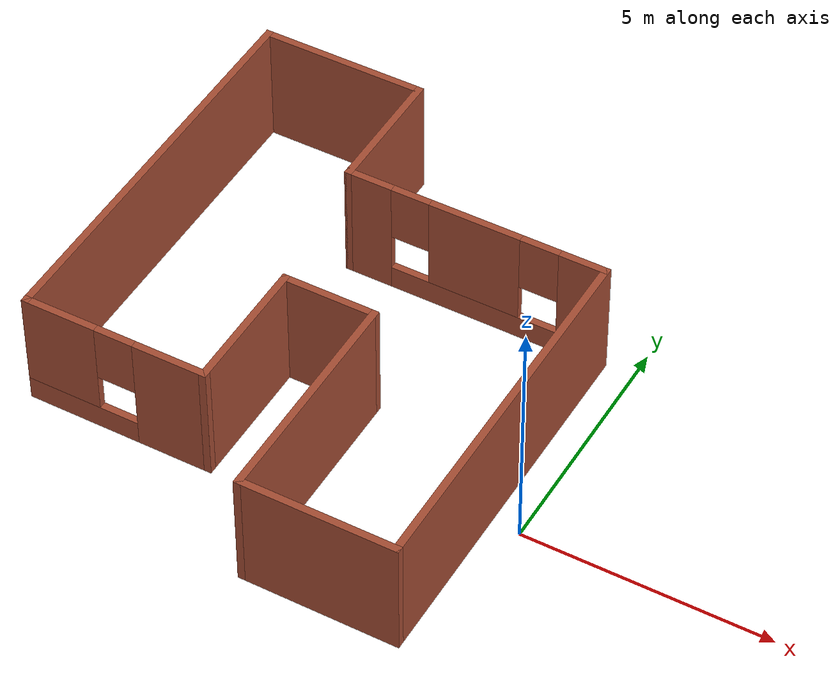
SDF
<?xml version='1.0'?>
<sdf version='1.6'>
  <model name='h'>
    <pose frame=''>-4.99031 1.85832 0 0 -0 0</pose>
    <link name='Wall_0'>
      <collision name='Wall_0_Collision'>
        <geometry>
          <box>
            <size>8.5 0.15 2.5</size>
          </box>
        </geometry>
        <pose frame=''>0 0 1.25 0 -0 0</pose>
      </collision>
      <visual name='Wall_0_Visual'>
        <pose frame=''>0 0 1.25 0 -0 0</pose>
        <geometry>
          <box>
            <size>8.5 0.15 2.5</size>
          </box>
        </geometry>
        <material>
          <script>
            <uri>file://media/materials/scripts/gazebo.material</uri>
            <name>Gazebo/Bricks</name>
          </script>
          <ambient>1 1 1 1</ambient>
        </material>
        <meta>
          <layer>0</layer>
        </meta>
      </visual>
      <pose frame=''>-4.34334 0.925 0 0 -0 1.5708</pose>
    </link>
    <link name='Wall_10'>
      <collision name='Wall_10_Collision'>
        <geometry>
          <box>
            <size>2.9 0.15 2.5</size>
          </box>
        </geometry>
        <pose frame=''>0 0 1.25 0 -0 0</pose>
      </collision>
      <visual name='Wall_10_Visual'>
        <pose frame=''>0 0 1.25 0 -0 0</pose>
        <geometry>
          <box>
            <size>2.9 0.15 2.5</size>
          </box>
        </geometry>
        <material>
          <script>
            <uri>file://media/materials/scripts/gazebo.material</uri>
            <name>Gazebo/Bricks</name>
          </script>
          <ambient>1 1 1 1</ambient>
        </material>
        <meta>
          <layer>0</layer>
        </meta>
      </visual>
      <pose frame=''>-0.606492 -1.875 0 0 -0 -1.5708</pose>
    </link>
    <link name='Wall_11'>
      <pose frame=''>-2.47492 -3.25 0 0 -0 -3.14159</pose>
      <visual name='Wall_11_Visual_0'>
        <pose frame=''>-1.17274 0 1.25 0 -0 0</pose>
        <geometry>
          <box>
            <size>1.54171 0.15 2.5</size>
          </box>
        </geometry>
        <material>
          <script>
            <uri>file://media/materials/scripts/gazebo.material</uri>
            <name>Gazebo/Bricks</name>
          </script>
          <ambient>1 1 1 1</ambient>
        </material>
        <meta>
          <layer>0</layer>
        </meta>
      </visual>
      <collision name='Wall_11_Collision_0'>
        <geometry>
          <box>
            <size>1.54171 0.15 2.5</size>
          </box>
        </geometry>
        <pose frame=''>-1.17274 0 1.25 0 -0 0</pose>
      </collision>
      <visual name='Wall_11_Visual_1'>
        <pose frame=''>0.770855 0 0.25 0 -0 0</pose>
        <geometry>
          <box>
            <size>2.34547 0.15 0.5</size>
          </box>
        </geometry>
        <material>
          <script>
            <uri>file://media/materials/scripts/gazebo.material</uri>
            <name>Gazebo/Bricks</name>
          </script>
          <ambient>1 1 1 1</ambient>
        </material>
        <meta>
          <layer>0</layer>
        </meta>
      </visual>
      <collision name='Wall_11_Collision_1'>
        <geometry>
          <box>
            <size>2.34547 0.15 0.5</size>
          </box>
        </geometry>
        <pose frame=''>0.770855 0 0.25 0 -0 0</pose>
      </collision>
      <visual name='Wall_11_Visual_2'>
        <pose frame=''>1.17085 0 1.5 0 -0 0</pose>
        <geometry>
          <box>
            <size>1.54547 0.15 2</size>
          </box>
        </geometry>
        <material>
          <script>
            <uri>file://media/materials/scripts/gazebo.material</uri>
            <name>Gazebo/Bricks</name>
          </script>
          <ambient>1 1 1 1</ambient>
        </material>
        <meta>
          <layer>0</layer>
        </meta>
      </visual>
      <collision name='Wall_11_Collision_2'>
        <geometry>
          <box>
            <size>1.54547 0.15 2</size>
          </box>
        </geometry>
        <pose frame=''>1.17085 0 1.5 0 -0 0</pose>
      </collision>
      <visual name='Wall_11_Visual_3'>
        <pose frame=''>-0.001883 0 1.9 0 -0 0</pose>
        <geometry>
          <box>
            <size>0.8 0.15 1.2</size>
          </box>
        </geometry>
        <material>
          <script>
            <uri>file://media/materials/scripts/gazebo.material</uri>
            <name>Gazebo/Bricks</name>
          </script>
          <ambient>1 1 1 1</ambient>
        </material>
        <meta>
          <layer>0</layer>
        </meta>
      </visual>
      <collision name='Wall_11_Collision_3'>
        <geometry>
          <box>
            <size>0.8 0.15 1.2</size>
          </box>
        </geometry>
        <pose frame=''>-0.001883 0 1.9 0 -0 0</pose>
      </collision>
    </link>
    <link name='Wall_3'>
      <collision name='Wall_3_Collision'>
        <geometry>
          <box>
            <size>3.4737 0.15 2.5</size>
          </box>
        </geometry>
        <pose frame=''>0 0 1.25 0 -0 0</pose>
      </collision>
      <visual name='Wall_3_Visual'>
        <pose frame=''>0 0 1.25 0 -0 0</pose>
        <geometry>
          <box>
            <size>3.4737 0.15 2.5</size>
          </box>
        </geometry>
        <material>
          <script>
            <uri>file://media/materials/scripts/gazebo.material</uri>
            <name>Gazebo/Bricks</name>
          </script>
          <ambient>1 1 1 1</ambient>
        </material>
        <meta>
          <layer>0</layer>
        </meta>
      </visual>
      <pose frame=''>-2.66834 5.1 0 0 -0 0</pose>
    </link>
    <link name='Wall_4'>
      <collision name='Wall_4_Collision'>
        <geometry>
          <box>
            <size>2.75 0.15 2.5</size>
          </box>
        </geometry>
        <pose frame=''>0 0 1.25 0 -0 0</pose>
      </collision>
      <visual name='Wall_4_Visual'>
        <pose frame=''>0 0 1.25 0 -0 0</pose>
        <geometry>
          <box>
            <size>2.75 0.15 2.5</size>
          </box>
        </geometry>
        <material>
          <script>
            <uri>file://media/materials/scripts/gazebo.material</uri>
            <name>Gazebo/Bricks</name>
          </script>
          <ambient>1 1 1 1</ambient>
        </material>
        <meta>
          <layer>0</layer>
        </meta>
      </visual>
      <pose frame=''>-1.00649 3.8 0 0 -0 -1.5708</pose>
    </link>
    <link name='Wall_5'>
      <pose frame=''>1.66851 2.5 0 0 -0 0</pose>
      <visual name='Wall_5_Visual_0'>
        <pose frame=''>-2.24984 0 1.25 0 -0 0</pose>
        <geometry>
          <box>
            <size>1.00033 0.15 2.5</size>
          </box>
        </geometry>
        <material>
          <script>
            <uri>file://media/materials/scripts/gazebo.material</uri>
            <name>Gazebo/Bricks</name>
          </script>
          <ambient>1 1 1 1</ambient>
        </material>
        <meta>
          <layer>0</layer>
        </meta>
      </visual>
      <collision name='Wall_5_Collision_0'>
        <geometry>
          <box>
            <size>1.00033 0.15 2.5</size>
          </box>
        </geometry>
        <pose frame=''>-2.24984 0 1.25 0 -0 0</pose>
      </collision>
      <visual name='Wall_5_Visual_1'>
        <pose frame=''>0.500163 0 0.25 0 -0 0</pose>
        <geometry>
          <box>
            <size>4.49967 0.15 0.5</size>
          </box>
        </geometry>
        <material>
          <script>
            <uri>file://media/materials/scripts/gazebo.material</uri>
            <name>Gazebo/Bricks</name>
          </script>
          <ambient>1 1 1 1</ambient>
        </material>
        <meta>
          <layer>0</layer>
        </meta>
      </visual>
      <collision name='Wall_5_Collision_1'>
        <geometry>
          <box>
            <size>4.49967 0.15 0.5</size>
          </box>
        </geometry>
        <pose frame=''>0.500163 0 0.25 0 -0 0</pose>
      </collision>
      <visual name='Wall_5_Visual_2'>
        <pose frame=''>0.000169 0 1.5 0 -0 0</pose>
        <geometry>
          <box>
            <size>1.89969 0.15 2</size>
          </box>
        </geometry>
        <material>
          <script>
            <uri>file://media/materials/scripts/gazebo.material</uri>
            <name>Gazebo/Bricks</name>
          </script>
          <ambient>1 1 1 1</ambient>
        </material>
        <meta>
          <layer>0</layer>
        </meta>
      </visual>
      <collision name='Wall_5_Collision_2'>
        <geometry>
          <box>
            <size>1.89969 0.15 2</size>
          </box>
        </geometry>
        <pose frame=''>0.000169 0 1.5 0 -0 0</pose>
      </collision>
      <visual name='Wall_5_Visual_3'>
        <pose frame=''>2.25001 0 1.5 0 -0 0</pose>
        <geometry>
          <box>
            <size>0.999987 0.15 2</size>
          </box>
        </geometry>
        <material>
          <script>
            <uri>file://media/materials/scripts/gazebo.material</uri>
            <name>Gazebo/Bricks</name>
          </script>
          <ambient>1 1 1 1</ambient>
        </material>
        <meta>
          <layer>0</layer>
        </meta>
      </visual>
      <collision name='Wall_5_Collision_3'>
        <geometry>
          <box>
            <size>0.999987 0.15 2</size>
          </box>
        </geometry>
        <pose frame=''>2.25001 0 1.5 0 -0 0</pose>
      </collision>
      <visual name='Wall_5_Visual_4'>
        <pose frame=''>-1.34967 0 1.9 0 -0 0</pose>
        <geometry>
          <box>
            <size>0.8 0.15 1.2</size>
          </box>
        </geometry>
        <material>
          <script>
            <uri>file://media/materials/scripts/gazebo.material</uri>
            <name>Gazebo/Bricks</name>
          </script>
          <ambient>1 1 1 1</ambient>
        </material>
        <meta>
          <layer>0</layer>
        </meta>
      </visual>
      <collision name='Wall_5_Collision_4'>
        <geometry>
          <box>
            <size>0.8 0.15 1.2</size>
          </box>
        </geometry>
        <pose frame=''>-1.34967 0 1.9 0 -0 0</pose>
      </collision>
      <visual name='Wall_5_Visual_5'>
        <pose frame=''>1.35001 0 1.9 0 -0 0</pose>
        <geometry>
          <box>
            <size>0.8 0.15 1.2</size>
          </box>
        </geometry>
        <material>
          <script>
            <uri>file://media/materials/scripts/gazebo.material</uri>
            <name>Gazebo/Bricks</name>
          </script>
          <ambient>1 1 1 1</ambient>
        </material>
        <meta>
          <layer>0</layer>
        </meta>
      </visual>
      <collision name='Wall_5_Collision_5'>
        <geometry>
          <box>
            <size>0.8 0.15 1.2</size>
          </box>
        </geometry>
        <pose frame=''>1.35001 0 1.9 0 -0 0</pose>
      </collision>
    </link>
    <link name='Wall_6'>
      <collision name='Wall_6_Collision'>
        <geometry>
          <box>
            <size>7.75 0.15 2.5</size>
          </box>
        </geometry>
        <pose frame=''>0 0 1.25 0 -0 0</pose>
      </collision>
      <visual name='Wall_6_Visual'>
        <pose frame=''>0 0 1.25 0 -0 0</pose>
        <geometry>
          <box>
            <size>7.75 0.15 2.5</size>
          </box>
        </geometry>
        <material>
          <script>
            <uri>file://media/materials/scripts/gazebo.material</uri>
            <name>Gazebo/Bricks</name>
          </script>
          <ambient>1 1 1 1</ambient>
        </material>
        <meta>
          <layer>0</layer>
        </meta>
      </visual>
      <pose frame=''>4.34351 -1.3 0 0 -0 -1.5708</pose>
    </link>
    <link name='Wall_7'>
      <collision name='Wall_7_Collision'>
        <geometry>
          <box>
            <size>3.25 0.15 2.5</size>
          </box>
        </geometry>
        <pose frame=''>0 0 1.25 0 -0 0</pose>
      </collision>
      <visual name='Wall_7_Visual'>
        <pose frame=''>0 0 1.25 0 -0 0</pose>
        <geometry>
          <box>
            <size>3.25 0.15 2.5</size>
          </box>
        </geometry>
        <material>
          <script>
            <uri>file://media/materials/scripts/gazebo.material</uri>
            <name>Gazebo/Bricks</name>
          </script>
          <ambient>1 1 1 1</ambient>
        </material>
        <meta>
          <layer>0</layer>
        </meta>
      </visual>
      <pose frame=''>2.79351 -5.1 0 0 -0 3.14159</pose>
    </link>
    <link name='Wall_8'>
      <collision name='Wall_8_Collision'>
        <geometry>
          <box>
            <size>4.75 0.15 2.5</size>
          </box>
        </geometry>
        <pose frame=''>0 0 1.25 0 -0 0</pose>
      </collision>
      <visual name='Wall_8_Visual'>
        <pose frame=''>0 0 1.25 0 -0 0</pose>
        <geometry>
          <box>
            <size>4.75 0.15 2.5</size>
          </box>
        </geometry>
        <material>
          <script>
            <uri>file://media/materials/scripts/gazebo.material</uri>
            <name>Gazebo/Bricks</name>
          </script>
          <ambient>1 1 1 1</ambient>
        </material>
        <meta>
          <layer>0</layer>
        </meta>
      </visual>
      <pose frame=''>1.24351 -2.8 0 0 -0 1.5708</pose>
    </link>
    <link name='Wall_9'>
      <collision name='Wall_9_Collision'>
        <geometry>
          <box>
            <size>2 0.15 2.5</size>
          </box>
        </geometry>
        <pose frame=''>0 0 1.25 0 -0 0</pose>
      </collision>
      <visual name='Wall_9_Visual'>
        <pose frame=''>0 0 1.25 0 -0 0</pose>
        <geometry>
          <box>
            <size>2 0.15 2.5</size>
          </box>
        </geometry>
        <material>
          <script>
            <uri>file://media/materials/scripts/gazebo.material</uri>
            <name>Gazebo/Bricks</name>
          </script>
          <ambient>1 1 1 1</ambient>
        </material>
        <meta>
          <layer>0</layer>
        </meta>
      </visual>
      <pose frame=''>0.318508 -0.5 0 0 -0 3.14159</pose>
    </link>
    <static>1</static>
  </model>
</sdf>
